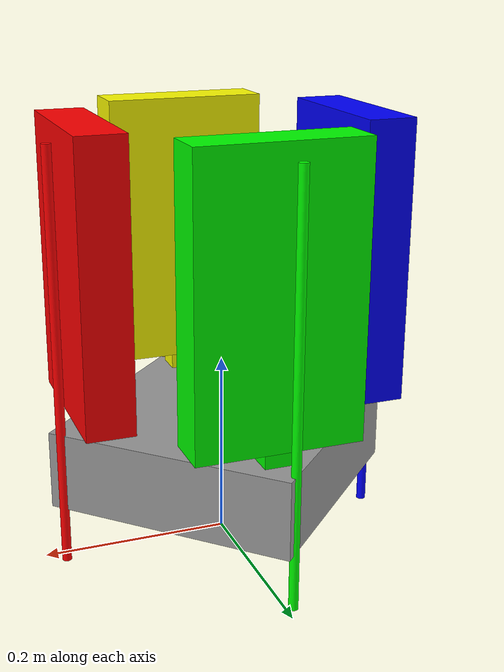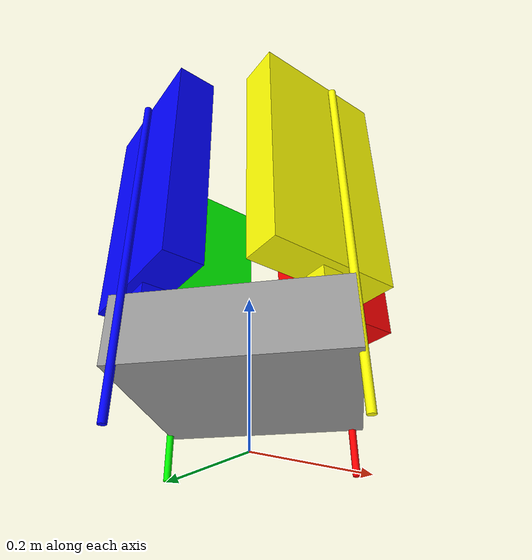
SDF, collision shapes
<?xml version='1.0'?>
<sdf version='1.6'>
  <model name='ComplexAquaShoko'>
    <link name='Baselink'>
      <pose frame=''>0 0 0.1 0 -0 0</pose>
      <inertial>
        <mass>2.55</mass>
        <inertia>
          <ixx>1</ixx>
          <ixy>0</ixy>
          <ixz>0</ixz>
          <iyy>1</iyy>
          <iyz>0</iyz>
          <izz>1</izz>
        </inertia>
        <pose frame=''>0 0 0 0 -0 0</pose>
      </inertial>
      <self_collide>0</self_collide>
      <kinematic>0</kinematic>
      <enable_wind>0</enable_wind>
      <visual name='visual'>
        <pose frame=''>0 0 -0.064 0 -0 0</pose>
        <geometry>
          <mesh>
            <uri>model://ComplexAquaShoko/meshes/BaseLink.dae</uri>
            <scale>1 1 1</scale>
          </mesh>
        </geometry>
        <material>
          <lighting>1</lighting>
          <script>
            <uri>file://media/materials/scripts/gazebo.material</uri>
            <name>Gazebo/Grey</name>
          </script>
          <ambient>0 0 0 0</ambient>
          <diffuse>0.7 0.7 0.7 1</diffuse>
          <specular>0.01 0.01 0.01 1</specular>
          <emissive>0 0 0 1</emissive>
          <shader type='vertex'>
            <normal_map>__default__</normal_map>
          </shader>
        </material>
        <transparency>0</transparency>
        <cast_shadows>1</cast_shadows>
      </visual>
      <collision name='collision'>
        <laser_retro>0</laser_retro>
        <max_contacts>10</max_contacts>
        <pose frame=''>0 0 0 0 -0 0.785</pose>
        <geometry>
          <box>
            <size>0.27 0.27 0.084</size>
          </box>
        </geometry>
        <surface>
          <friction>
            <ode>
              <mu>1</mu>
              <mu2>1</mu2>
              <fdir1>0 0 0</fdir1>
              <slip1>0</slip1>
              <slip2>0</slip2>
            </ode>
            <torsional>
              <coefficient>1</coefficient>
              <patch_radius>0</patch_radius>
              <surface_radius>0</surface_radius>
              <use_patch_radius>1</use_patch_radius>
              <ode>
                <slip>0</slip>
              </ode>
            </torsional>
          </friction>
          <bounce>
            <restitution_coefficient>0</restitution_coefficient>
            <threshold>1e+06</threshold>
          </bounce>
          <contact>
            <collide_without_contact>0</collide_without_contact>
            <collide_without_contact_bitmask>1</collide_without_contact_bitmask>
            <collide_bitmask>1</collide_bitmask>
            <ode>
              <soft_cfm>0</soft_cfm>
              <soft_erp>0.8</soft_erp>
              <kp>1e+13</kp>
              <kd>1</kd>
              <max_vel>0.01</max_vel>
              <min_depth>0</min_depth>
            </ode>
            <bullet>
              <split_impulse>1</split_impulse>
              <split_impulse_penetration_threshold>-0.01</split_impulse_penetration_threshold>
              <soft_cfm>0</soft_cfm>
              <soft_erp>0.8</soft_erp>
              <kp>1e+13</kp>
              <kd>1</kd>
            </bullet>
          </contact>
        </surface>
      </collision>
    </link>
    <link name='HormToHorn1'>
      <pose frame=''>0.145 0 0.17 0 -0 3.14</pose>
      <inertial>
        <mass>0.033</mass>
        <inertia>
          <ixx>1</ixx>
          <ixy>0</ixy>
          <ixz>0</ixz>
          <iyy>1</iyy>
          <iyz>0</iyz>
          <izz>1</izz>
        </inertia>
        <pose frame=''>0 0 0 0 -0 0</pose>
      </inertial>
      <self_collide>0</self_collide>
      <kinematic>0</kinematic>
      <enable_wind>0</enable_wind>
      <gravity>1</gravity>
      <visual name='visual'>
        <pose frame=''>0 0 -0.0535 0 -0 0</pose>
        <geometry>
          <mesh>
            <uri>model://ComplexAquaShoko/meshes/HornToHornLink.dae</uri>
            <scale>1 1 1</scale>
          </mesh>
        </geometry>
        <material>
          <lighting>1</lighting>
          <script>
            <uri>file://media/materials/scripts/gazebo.material</uri>
            <name>Gazebo/Grey</name>
          </script>
          <ambient>1 0 0 1</ambient>
          <diffuse>0.7 0.7 0.7 1</diffuse>
          <specular>0.01 0.01 0.01 1</specular>
          <emissive>0 0 0 1</emissive>
          <shader type='vertex'>
            <normal_map>__default__</normal_map>
          </shader>
        </material>
        <transparency>0</transparency>
        <cast_shadows>1</cast_shadows>
      </visual>
      <collision name='collision'>
        <laser_retro>0</laser_retro>
        <max_contacts>10</max_contacts>
        <pose frame=''>0 0 0 0 -0 0</pose>
        <geometry>
          <box>
            <size>0.028 0.028 0.053</size>
          </box>
        </geometry>
        <surface>
          <friction>
            <ode>
              <mu>1</mu>
              <mu2>1</mu2>
              <fdir1>0 0 0</fdir1>
              <slip1>0</slip1>
              <slip2>0</slip2>
            </ode>
            <torsional>
              <coefficient>1</coefficient>
              <patch_radius>0</patch_radius>
              <surface_radius>0</surface_radius>
              <use_patch_radius>1</use_patch_radius>
              <ode>
                <slip>0</slip>
              </ode>
            </torsional>
          </friction>
          <bounce>
            <restitution_coefficient>0</restitution_coefficient>
            <threshold>1e+06</threshold>
          </bounce>
          <contact>
            <collide_without_contact>0</collide_without_contact>
            <collide_without_contact_bitmask>1</collide_without_contact_bitmask>
            <collide_bitmask>1</collide_bitmask>
            <ode>
              <soft_cfm>0</soft_cfm>
              <soft_erp>0.8</soft_erp>
              <kp>1e+13</kp>
              <kd>1</kd>
              <max_vel>0.01</max_vel>
              <min_depth>0</min_depth>
            </ode>
            <bullet>
              <split_impulse>1</split_impulse>
              <split_impulse_penetration_threshold>-0.01</split_impulse_penetration_threshold>
              <soft_cfm>0</soft_cfm>
              <soft_erp>0.8</soft_erp>
              <kp>1e+13</kp>
              <kd>1</kd>
            </bullet>
          </contact>
        </surface>
      </collision>
    </link>
    <link name='HormToHorn2'>
      <pose frame=''>0 0.145 0.17 0 0 -1.57</pose>
      <inertial>
        <mass>0.033</mass>
        <inertia>
          <ixx>1</ixx>
          <ixy>0</ixy>
          <ixz>0</ixz>
          <iyy>1</iyy>
          <iyz>0</iyz>
          <izz>1</izz>
        </inertia>
        <pose frame=''>0 0 0 0 -0 0</pose>
      </inertial>
      <self_collide>0</self_collide>
      <kinematic>0</kinematic>
      <enable_wind>0</enable_wind>
      <gravity>1</gravity>
      <visual name='visual'>
        <pose frame=''>0 0 -0.0535 0 -0 0</pose>
        <geometry>
          <mesh>
            <uri>model://ComplexAquaShoko/meshes/HornToHornLink.dae</uri>
            <scale>1 1 1</scale>
          </mesh>
        </geometry>
        <material>
          <lighting>1</lighting>
          <script>
            <uri>file://media/materials/scripts/gazebo.material</uri>
            <name>Gazebo/Grey</name>
          </script>
          <ambient>0 1 0 1</ambient>
          <diffuse>0.7 0.7 0.7 1</diffuse>
          <specular>0.01 0.01 0.01 1</specular>
          <emissive>0 0 0 1</emissive>
          <shader type='vertex'>
            <normal_map>__default__</normal_map>
          </shader>
        </material>
        <transparency>0</transparency>
        <cast_shadows>1</cast_shadows>
      </visual>
      <collision name='collision'>
        <laser_retro>0</laser_retro>
        <max_contacts>10</max_contacts>
        <pose frame=''>0 0 0 0 -0 0</pose>
        <geometry>
          <box>
            <size>0.028 0.028 0.053</size>
          </box>
        </geometry>
        <surface>
          <friction>
            <ode>
              <mu>1</mu>
              <mu2>1</mu2>
              <fdir1>0 0 0</fdir1>
              <slip1>0</slip1>
              <slip2>0</slip2>
            </ode>
            <torsional>
              <coefficient>1</coefficient>
              <patch_radius>0</patch_radius>
              <surface_radius>0</surface_radius>
              <use_patch_radius>1</use_patch_radius>
              <ode>
                <slip>0</slip>
              </ode>
            </torsional>
          </friction>
          <bounce>
            <restitution_coefficient>0</restitution_coefficient>
            <threshold>1e+06</threshold>
          </bounce>
          <contact>
            <collide_without_contact>0</collide_without_contact>
            <collide_without_contact_bitmask>1</collide_without_contact_bitmask>
            <collide_bitmask>1</collide_bitmask>
            <ode>
              <soft_cfm>0</soft_cfm>
              <soft_erp>0.8</soft_erp>
              <kp>1e+13</kp>
              <kd>1</kd>
              <max_vel>0.01</max_vel>
              <min_depth>0</min_depth>
            </ode>
            <bullet>
              <split_impulse>1</split_impulse>
              <split_impulse_penetration_threshold>-0.01</split_impulse_penetration_threshold>
              <soft_cfm>0</soft_cfm>
              <soft_erp>0.8</soft_erp>
              <kp>1e+13</kp>
              <kd>1</kd>
            </bullet>
          </contact>
        </surface>
      </collision>
    </link>
    <link name='HormToHorn3'>
      <pose frame=''>-0.145 0 0.17 0 -0 0</pose>
      <inertial>
        <mass>0.033</mass>
        <inertia>
          <ixx>1</ixx>
          <ixy>0</ixy>
          <ixz>0</ixz>
          <iyy>1</iyy>
          <iyz>0</iyz>
          <izz>1</izz>
        </inertia>
        <pose frame=''>0 0 0 0 -0 0</pose>
      </inertial>
      <self_collide>0</self_collide>
      <kinematic>0</kinematic>
      <enable_wind>0</enable_wind>
      <gravity>1</gravity>
      <visual name='visual'>
        <pose frame=''>0 0 -0.0535 0 -0 0</pose>
        <geometry>
          <mesh>
            <uri>model://ComplezAquaShoko/meshes/HornToHornLink.dae</uri>
            <scale>1 1 1</scale>
          </mesh>
        </geometry>
        <material>
          <lighting>1</lighting>
          <script>
            <uri>file://media/materials/scripts/gazebo.material</uri>
            <name>Gazebo/Grey</name>
          </script>
          <ambient>0 0 1 1</ambient>
          <diffuse>0.7 0.7 0.7 1</diffuse>
          <specular>0.01 0.01 0.01 1</specular>
          <emissive>0 0 0 1</emissive>
          <shader type='vertex'>
            <normal_map>__default__</normal_map>
          </shader>
        </material>
        <transparency>0</transparency>
        <cast_shadows>1</cast_shadows>
      </visual>
      <collision name='collision'>
        <laser_retro>0</laser_retro>
        <max_contacts>10</max_contacts>
        <pose frame=''>0 0 0 0 -0 0</pose>
        <geometry>
          <box>
            <size>0.028 0.028 0.053</size>
          </box>
        </geometry>
        <surface>
          <friction>
            <ode>
              <mu>1</mu>
              <mu2>1</mu2>
              <fdir1>0 0 0</fdir1>
              <slip1>0</slip1>
              <slip2>0</slip2>
            </ode>
            <torsional>
              <coefficient>1</coefficient>
              <patch_radius>0</patch_radius>
              <surface_radius>0</surface_radius>
              <use_patch_radius>1</use_patch_radius>
              <ode>
                <slip>0</slip>
              </ode>
            </torsional>
          </friction>
          <bounce>
            <restitution_coefficient>0</restitution_coefficient>
            <threshold>1e+06</threshold>
          </bounce>
          <contact>
            <collide_without_contact>0</collide_without_contact>
            <collide_without_contact_bitmask>1</collide_without_contact_bitmask>
            <collide_bitmask>1</collide_bitmask>
            <ode>
              <soft_cfm>0</soft_cfm>
              <soft_erp>0.8</soft_erp>
              <kp>1e+13</kp>
              <kd>1</kd>
              <max_vel>0.01</max_vel>
              <min_depth>0</min_depth>
            </ode>
            <bullet>
              <split_impulse>1</split_impulse>
              <split_impulse_penetration_threshold>-0.01</split_impulse_penetration_threshold>
              <soft_cfm>0</soft_cfm>
              <soft_erp>0.8</soft_erp>
              <kp>1e+13</kp>
              <kd>1</kd>
            </bullet>
          </contact>
        </surface>
      </collision>
    </link>
    <link name='HormToHorn4'>
      <pose frame=''>0 -0.145 0.17 0 -0 1.57</pose>
      <inertial>
        <mass>0.033</mass>
        <inertia>
          <ixx>1</ixx>
          <ixy>0</ixy>
          <ixz>0</ixz>
          <iyy>1</iyy>
          <iyz>0</iyz>
          <izz>1</izz>
        </inertia>
        <pose frame=''>0 0 0 0 -0 0</pose>
      </inertial>
      <self_collide>0</self_collide>
      <kinematic>0</kinematic>
      <enable_wind>0</enable_wind>
      <gravity>1</gravity>
      <visual name='visual'>
        <pose frame=''>0 0 -0.0535 0 -0 0</pose>
        <geometry>
          <mesh>
            <uri>model://ComplexAquaShoko/meshes/HornToHornLink.dae</uri>
            <scale>1 1 1</scale>
          </mesh>
        </geometry>
        <material>
          <lighting>1</lighting>
          <script>
            <uri>file://media/materials/scripts/gazebo.material</uri>
            <name>Gazebo/Grey</name>
          </script>
          <ambient>1 1 0 1</ambient>
          <diffuse>0.7 0.7 0.7 1</diffuse>
          <specular>0.01 0.01 0.01 1</specular>
          <emissive>0 0 0 1</emissive>
          <shader type='vertex'>
            <normal_map>__default__</normal_map>
          </shader>
        </material>
        <transparency>0</transparency>
        <cast_shadows>1</cast_shadows>
      </visual>
      <collision name='collision'>
        <laser_retro>0</laser_retro>
        <max_contacts>10</max_contacts>
        <pose frame=''>0 0 0 0 -0 0</pose>
        <geometry>
          <box>
            <size>0.028 0.028 0.053</size>
          </box>
        </geometry>
        <surface>
          <friction>
            <ode>
              <mu>1</mu>
              <mu2>1</mu2>
              <fdir1>0 0 0</fdir1>
              <slip1>0</slip1>
              <slip2>0</slip2>
            </ode>
            <torsional>
              <coefficient>1</coefficient>
              <patch_radius>0</patch_radius>
              <surface_radius>0</surface_radius>
              <use_patch_radius>1</use_patch_radius>
              <ode>
                <slip>0</slip>
              </ode>
            </torsional>
          </friction>
          <bounce>
            <restitution_coefficient>0</restitution_coefficient>
            <threshold>1e+06</threshold>
          </bounce>
          <contact>
            <collide_without_contact>0</collide_without_contact>
            <collide_without_contact_bitmask>1</collide_without_contact_bitmask>
            <collide_bitmask>1</collide_bitmask>
            <ode>
              <soft_cfm>0</soft_cfm>
              <soft_erp>0.8</soft_erp>
              <kp>1e+13</kp>
              <kd>1</kd>
              <max_vel>0.01</max_vel>
              <min_depth>0</min_depth>
            </ode>
            <bullet>
              <split_impulse>1</split_impulse>
              <split_impulse_penetration_threshold>-0.01</split_impulse_penetration_threshold>
              <soft_cfm>0</soft_cfm>
              <soft_erp>0.8</soft_erp>
              <kp>1e+13</kp>
              <kd>1</kd>
            </bullet>
          </contact>
        </surface>
      </collision>
    </link>
    <link name='endLeg1'>
      <pose frame=''>0.180014 0.009444 0.22 0 -0 0</pose>
      <inertial>
        <mass>0.088</mass>
        <inertia>
          <ixx>1</ixx>
          <ixy>0</ixy>
          <ixz>0</ixz>
          <iyy>1</iyy>
          <iyz>0</iyz>
          <izz>1</izz>
        </inertia>
        <pose frame=''>0 0 0 0 -0 0</pose>
      </inertial>
      <self_collide>0</self_collide>
      <kinematic>0</kinematic>
      <enable_wind>0</enable_wind>
      <gravity>1</gravity>
      <visual name='visual'>
        <pose frame=''>0 0 -0.243 0 -0 0</pose>
        <geometry>
          <mesh>
            <uri>model://ComplexAquaShoko/meshes/endLegLink.dae</uri>
            <scale>1 1 1</scale>
          </mesh>
        </geometry>
        <material>
          <lighting>1</lighting>
          <script>
            <uri>file://media/materials/scripts/gazebo.material</uri>
            <name>Gazebo/Grey</name>
          </script>
          <ambient>1 0 0 1</ambient>
          <diffuse>0.7 0.7 0.7 1</diffuse>
          <specular>0.01 0.01 0.01 1</specular>
          <emissive>0 0 0 1</emissive>
          <shader type='vertex'>
            <normal_map>__default__</normal_map>
          </shader>
        </material>
        <transparency>0</transparency>
        <cast_shadows>1</cast_shadows>
      </visual>
      <collision name='collision'>
        <laser_retro>0</laser_retro>
        <max_contacts>10</max_contacts>
        <pose frame=''>0 0 0 0 -0 0</pose>
        <geometry>
          <cylinder>
            <radius>0.005</radius>
            <length>0.446</length>
          </cylinder>
        </geometry>
        <surface>
          <friction>
            <ode>
              <mu>0.5</mu>
              <mu2>0.5</mu2>
              <fdir1>0 0 0</fdir1>
              <slip1>0</slip1>
              <slip2>0</slip2>
            </ode>
            <torsional>
              <coefficient>1</coefficient>
              <patch_radius>0</patch_radius>
              <surface_radius>0</surface_radius>
              <use_patch_radius>1</use_patch_radius>
              <ode>
                <slip>0</slip>
              </ode>
            </torsional>
          </friction>
          <bounce>
            <restitution_coefficient>0</restitution_coefficient>
            <threshold>1e+20</threshold>
          </bounce>
          <contact>
            <collide_without_contact>0</collide_without_contact>
            <collide_without_contact_bitmask>1</collide_without_contact_bitmask>
            <collide_bitmask>1</collide_bitmask>
            <ode>
              <soft_cfm>0</soft_cfm>
              <soft_erp>0.8</soft_erp>
              <kp>1e+13</kp>
              <kd>1</kd>
              <max_vel>0.01</max_vel>
              <min_depth>0</min_depth>
            </ode>
            <bullet>
              <split_impulse>1</split_impulse>
              <split_impulse_penetration_threshold>-0.01</split_impulse_penetration_threshold>
              <soft_cfm>0</soft_cfm>
              <soft_erp>0.8</soft_erp>
              <kp>1e+13</kp>
              <kd>1</kd>
            </bullet>
          </contact>
        </surface>
      </collision>
    </link>
    <link name='endLeg2'>
      <pose frame=''>-0.009528 0.179992 0.22 0 -0 1.57</pose>
      <inertial>
        <mass>0.088</mass>
        <inertia>
          <ixx>1</ixx>
          <ixy>0</ixy>
          <ixz>0</ixz>
          <iyy>1</iyy>
          <iyz>0</iyz>
          <izz>1</izz>
        </inertia>
        <pose frame=''>0 0 0 0 -0 0</pose>
      </inertial>
      <self_collide>0</self_collide>
      <kinematic>0</kinematic>
      <enable_wind>0</enable_wind>
      <gravity>1</gravity>
      <visual name='visual'>
        <pose frame=''>0 0 -0.243 0 -0 0</pose>
        <geometry>
          <mesh>
            <uri>model://ComplexAquaShoko/meshes/endLegLink.dae</uri>
            <scale>1 1 1</scale>
          </mesh>
        </geometry>
        <material>
          <lighting>1</lighting>
          <script>
            <uri>file://media/materials/scripts/gazebo.material</uri>
            <name>Gazebo/Grey</name>
          </script>
          <ambient>0 1 0 1</ambient>
          <diffuse>0.7 0.7 0.7 1</diffuse>
          <specular>0.01 0.01 0.01 1</specular>
          <emissive>0 0 0 1</emissive>
          <shader type='vertex'>
            <normal_map>__default__</normal_map>
          </shader>
        </material>
        <transparency>0</transparency>
        <cast_shadows>1</cast_shadows>
      </visual>
      <collision name='collision'>
        <laser_retro>0</laser_retro>
        <max_contacts>10</max_contacts>
        <pose frame=''>0 0 0 0 -0 0</pose>
        <geometry>
          <cylinder>
            <radius>0.005</radius>
            <length>0.446</length>
          </cylinder>
        </geometry>
        <surface>
          <friction>
            <ode>
              <mu>0.5</mu>
              <mu2>0.5</mu2>
              <fdir1>0 0 0</fdir1>
              <slip1>0</slip1>
              <slip2>0</slip2>
            </ode>
            <torsional>
              <coefficient>1</coefficient>
              <patch_radius>0</patch_radius>
              <surface_radius>0</surface_radius>
              <use_patch_radius>1</use_patch_radius>
              <ode>
                <slip>0</slip>
              </ode>
            </torsional>
          </friction>
          <bounce>
            <restitution_coefficient>0</restitution_coefficient>
            <threshold>1e+20</threshold>
          </bounce>
          <contact>
            <collide_without_contact>0</collide_without_contact>
            <collide_without_contact_bitmask>1</collide_without_contact_bitmask>
            <collide_bitmask>1</collide_bitmask>
            <ode>
              <soft_cfm>0</soft_cfm>
              <soft_erp>0.8</soft_erp>
              <kp>1e+13</kp>
              <kd>1</kd>
              <max_vel>0.01</max_vel>
              <min_depth>0</min_depth>
            </ode>
            <bullet>
              <split_impulse>1</split_impulse>
              <split_impulse_penetration_threshold>-0.01</split_impulse_penetration_threshold>
              <soft_cfm>0</soft_cfm>
              <soft_erp>0.8</soft_erp>
              <kp>1e+13</kp>
              <kd>1</kd>
            </bullet>
          </contact>
        </surface>
      </collision>
    </link>
    <link name='endLeg3'>
      <pose frame=''>-0.18 -0.0095 0.22 0 -0 3.14</pose>
      <inertial>
        <mass>0.088</mass>
        <inertia>
          <ixx>1</ixx>
          <ixy>0</ixy>
          <ixz>0</ixz>
          <iyy>1</iyy>
          <iyz>0</iyz>
          <izz>1</izz>
        </inertia>
        <pose frame=''>0 0 0 0 -0 0</pose>
      </inertial>
      <self_collide>0</self_collide>
      <kinematic>0</kinematic>
      <enable_wind>0</enable_wind>
      <gravity>1</gravity>
      <visual name='visual'>
        <pose frame=''>0 0 -0.243 0 -0 0</pose>
        <geometry>
          <mesh>
            <uri>model://ComplexAquaShoko/meshes/endLegLink.dae</uri>
            <scale>1 1 1</scale>
          </mesh>
        </geometry>
        <material>
          <lighting>1</lighting>
          <script>
            <uri>file://media/materials/scripts/gazebo.material</uri>
            <name>Gazebo/Grey</name>
          </script>
          <ambient>0 0 1 1</ambient>
          <diffuse>0.7 0.7 0.7 1</diffuse>
          <specular>0.01 0.01 0.01 1</specular>
          <emissive>0 0 0 1</emissive>
          <shader type='vertex'>
            <normal_map>__default__</normal_map>
          </shader>
        </material>
        <transparency>0</transparency>
        <cast_shadows>1</cast_shadows>
      </visual>
      <collision name='collision'>
        <laser_retro>0</laser_retro>
        <max_contacts>10</max_contacts>
        <pose frame=''>0 0 0 0 -0 0</pose>
        <geometry>
          <cylinder>
            <radius>0.005</radius>
            <length>0.446</length>
          </cylinder>
        </geometry>
        <surface>
          <friction>
            <ode>
              <mu>0.5</mu>
              <mu2>0.5</mu2>
              <fdir1>0 0 0</fdir1>
              <slip1>0</slip1>
              <slip2>0</slip2>
            </ode>
            <torsional>
              <coefficient>1</coefficient>
              <patch_radius>0</patch_radius>
              <surface_radius>0</surface_radius>
              <use_patch_radius>1</use_patch_radius>
              <ode>
                <slip>0</slip>
              </ode>
            </torsional>
          </friction>
          <bounce>
            <restitution_coefficient>0</restitution_coefficient>
            <threshold>1e+20</threshold>
          </bounce>
          <contact>
            <collide_without_contact>0</collide_without_contact>
            <collide_without_contact_bitmask>1</collide_without_contact_bitmask>
            <collide_bitmask>1</collide_bitmask>
            <ode>
              <soft_cfm>0</soft_cfm>
              <soft_erp>0.8</soft_erp>
              <kp>1e+13</kp>
              <kd>1</kd>
              <max_vel>0.01</max_vel>
              <min_depth>0</min_depth>
            </ode>
            <bullet>
              <split_impulse>1</split_impulse>
              <split_impulse_penetration_threshold>-0.01</split_impulse_penetration_threshold>
              <soft_cfm>0</soft_cfm>
              <soft_erp>0.8</soft_erp>
              <kp>1e+13</kp>
              <kd>1</kd>
            </bullet>
          </contact>
        </surface>
      </collision>
    </link>
    <link name='endLeg4'>
      <pose frame=''>0.009472 -0.180008 0.22 0 0 -1.57319</pose>
      <inertial>
        <mass>0.088</mass>
        <inertia>
          <ixx>1</ixx>
          <ixy>0</ixy>
          <ixz>0</ixz>
          <iyy>1</iyy>
          <iyz>0</iyz>
          <izz>1</izz>
        </inertia>
        <pose frame=''>0 0 0 0 -0 0</pose>
      </inertial>
      <self_collide>0</self_collide>
      <kinematic>0</kinematic>
      <enable_wind>0</enable_wind>
      <gravity>1</gravity>
      <visual name='visual'>
        <pose frame=''>0 0 -0.243 0 -0 0</pose>
        <geometry>
          <mesh>
            <uri>model://ComplexAquaShoko/meshes/endLegLink.dae</uri>
            <scale>1 1 1</scale>
          </mesh>
        </geometry>
        <material>
          <lighting>1</lighting>
          <script>
            <uri>file://media/materials/scripts/gazebo.material</uri>
            <name>Gazebo/Grey</name>
          </script>
          <ambient>1 1 0 1</ambient>
          <diffuse>0.7 0.7 0.7 1</diffuse>
          <specular>0.01 0.01 0.01 1</specular>
          <emissive>0 0 0 1</emissive>
          <shader type='vertex'>
            <normal_map>__default__</normal_map>
          </shader>
        </material>
        <transparency>0</transparency>
        <cast_shadows>1</cast_shadows>
      </visual>
      <collision name='collision'>
        <laser_retro>0</laser_retro>
        <max_contacts>10</max_contacts>
        <pose frame=''>0 0 0 0 -0 0</pose>
        <geometry>
          <cylinder>
            <radius>0.005</radius>
            <length>0.446</length>
          </cylinder>
        </geometry>
        <surface>
          <friction>
            <ode>
              <mu>0.5</mu>
              <mu2>0.5</mu2>
              <fdir1>0 0 0</fdir1>
              <slip1>0</slip1>
              <slip2>0</slip2>
            </ode>
            <torsional>
              <coefficient>1</coefficient>
              <patch_radius>0</patch_radius>
              <surface_radius>0</surface_radius>
              <use_patch_radius>1</use_patch_radius>
              <ode>
                <slip>0</slip>
              </ode>
            </torsional>
          </friction>
          <bounce>
            <restitution_coefficient>0</restitution_coefficient>
            <threshold>1e+20</threshold>
          </bounce>
          <contact>
            <collide_without_contact>0</collide_without_contact>
            <collide_without_contact_bitmask>1</collide_without_contact_bitmask>
            <collide_bitmask>1</collide_bitmask>
            <ode>
              <soft_cfm>0</soft_cfm>
              <soft_erp>0.8</soft_erp>
              <kp>1e+13</kp>
              <kd>1</kd>
              <max_vel>0.01</max_vel>
              <min_depth>0</min_depth>
            </ode>
            <bullet>
              <split_impulse>1</split_impulse>
              <split_impulse_penetration_threshold>-0.01</split_impulse_penetration_threshold>
              <soft_cfm>0</soft_cfm>
              <soft_erp>0.8</soft_erp>
              <kp>1e+13</kp>
              <kd>1</kd>
            </bullet>
          </contact>
        </surface>
      </collision>
    </link>
    <link name='middleLeg1'>
      <pose frame=''>0.144995 -0.0025 0.312 0 -0 3.14</pose>
      <inertial>
        <mass>1.39</mass>
        <inertia>
          <ixx>1</ixx>
          <ixy>0</ixy>
          <ixz>0</ixz>
          <iyy>1</iyy>
          <iyz>0</iyz>
          <izz>1</izz>
        </inertia>
        <pose frame=''>0 0 0 0 -0 0</pose>
      </inertial>
      <self_collide>0</self_collide>
      <kinematic>0</kinematic>
      <enable_wind>0</enable_wind>
      <gravity>1</gravity>
      <visual name='visual'>
        <pose frame=''>0 0 -0.17 0 -0 0</pose>
        <geometry>
          <mesh>
            <uri>model://ComplexAquaShoko/meshes/middleLegLink.dae</uri>
            <scale>1 1 1</scale>
          </mesh>
        </geometry>
        <material>
          <lighting>1</lighting>
          <script>
            <uri>file://media/materials/scripts/gazebo.material</uri>
            <name>Gazebo/Grey</name>
          </script>
          <ambient>1 0 0 1</ambient>
          <diffuse>0.7 0.7 0.7 1</diffuse>
          <specular>0.01 0.01 0.01 1</specular>
          <emissive>0 0 0 1</emissive>
          <shader type='vertex'>
            <normal_map>__default__</normal_map>
          </shader>
        </material>
        <transparency>0</transparency>
        <cast_shadows>1</cast_shadows>
      </visual>
      <collision name='collision'>
        <laser_retro>0</laser_retro>
        <max_contacts>10</max_contacts>
        <pose frame=''>0 0 0 0 -0 0</pose>
        <geometry>
          <box>
            <size>0.051 0.173 0.297</size>
          </box>
        </geometry>
        <surface>
          <friction>
            <ode>
              <mu>1</mu>
              <mu2>1</mu2>
              <fdir1>0 0 0</fdir1>
              <slip1>0</slip1>
              <slip2>0</slip2>
            </ode>
            <torsional>
              <coefficient>1</coefficient>
              <patch_radius>0</patch_radius>
              <surface_radius>0</surface_radius>
              <use_patch_radius>1</use_patch_radius>
              <ode>
                <slip>0</slip>
              </ode>
            </torsional>
          </friction>
          <bounce>
            <restitution_coefficient>0</restitution_coefficient>
            <threshold>1e+06</threshold>
          </bounce>
          <contact>
            <collide_without_contact>0</collide_without_contact>
            <collide_without_contact_bitmask>1</collide_without_contact_bitmask>
            <collide_bitmask>1</collide_bitmask>
            <ode>
              <soft_cfm>0</soft_cfm>
              <soft_erp>0.8</soft_erp>
              <kp>1e+13</kp>
              <kd>1</kd>
              <max_vel>0.01</max_vel>
              <min_depth>0</min_depth>
            </ode>
            <bullet>
              <split_impulse>1</split_impulse>
              <split_impulse_penetration_threshold>-0.01</split_impulse_penetration_threshold>
              <soft_cfm>0</soft_cfm>
              <soft_erp>0.8</soft_erp>
              <kp>1e+13</kp>
              <kd>1</kd>
            </bullet>
          </contact>
        </surface>
      </collision>
    </link>
    <link name='middleLeg2'>
      <pose frame=''>0.0025 0.145002 0.312 0 0 -1.57</pose>
      <inertial>
        <mass>1.39</mass>
        <inertia>
          <ixx>1</ixx>
          <ixy>0</ixy>
          <ixz>0</ixz>
          <iyy>1</iyy>
          <iyz>0</iyz>
          <izz>1</izz>
        </inertia>
        <pose frame=''>0 0 0 0 -0 0</pose>
      </inertial>
      <self_collide>0</self_collide>
      <kinematic>0</kinematic>
      <enable_wind>0</enable_wind>
      <gravity>1</gravity>
      <visual name='visual'>
        <pose frame=''>0 0 -0.17 0 -0 0</pose>
        <geometry>
          <mesh>
            <uri>model://ComplexAquaShoko/meshes/middleLegLink.dae</uri>
            <scale>1 1 1</scale>
          </mesh>
        </geometry>
        <material>
          <lighting>1</lighting>
          <script>
            <uri>file://media/materials/scripts/gazebo.material</uri>
            <name>Gazebo/Grey</name>
          </script>
          <ambient>0 1 0 1</ambient>
          <diffuse>0.7 0.7 0.7 1</diffuse>
          <specular>0.01 0.01 0.01 1</specular>
          <emissive>0 0 0 1</emissive>
          <shader type='vertex'>
            <normal_map>__default__</normal_map>
          </shader>
        </material>
        <transparency>0</transparency>
        <cast_shadows>1</cast_shadows>
      </visual>
      <collision name='collision'>
        <laser_retro>0</laser_retro>
        <max_contacts>10</max_contacts>
        <pose frame=''>0 0 0 0 -0 0</pose>
        <geometry>
          <box>
            <size>0.051 0.173 0.297</size>
          </box>
        </geometry>
        <surface>
          <friction>
            <ode>
              <mu>1</mu>
              <mu2>1</mu2>
              <fdir1>0 0 0</fdir1>
              <slip1>0</slip1>
              <slip2>0</slip2>
            </ode>
            <torsional>
              <coefficient>1</coefficient>
              <patch_radius>0</patch_radius>
              <surface_radius>0</surface_radius>
              <use_patch_radius>1</use_patch_radius>
              <ode>
                <slip>0</slip>
              </ode>
            </torsional>
          </friction>
          <bounce>
            <restitution_coefficient>0</restitution_coefficient>
            <threshold>1e+06</threshold>
          </bounce>
          <contact>
            <collide_without_contact>0</collide_without_contact>
            <collide_without_contact_bitmask>1</collide_without_contact_bitmask>
            <collide_bitmask>1</collide_bitmask>
            <ode>
              <soft_cfm>0</soft_cfm>
              <soft_erp>0.8</soft_erp>
              <kp>1e+13</kp>
              <kd>1</kd>
              <max_vel>0.01</max_vel>
              <min_depth>0</min_depth>
            </ode>
            <bullet>
              <split_impulse>1</split_impulse>
              <split_impulse_penetration_threshold>-0.01</split_impulse_penetration_threshold>
              <soft_cfm>0</soft_cfm>
              <soft_erp>0.8</soft_erp>
              <kp>1e+13</kp>
              <kd>1</kd>
            </bullet>
          </contact>
        </surface>
      </collision>
    </link>
    <link name='middleLeg3'>
      <pose frame=''>-0.145 0.0025 0.312 0 -0 0</pose>
      <inertial>
        <mass>1.39</mass>
        <inertia>
          <ixx>1</ixx>
          <ixy>0</ixy>
          <ixz>0</ixz>
          <iyy>1</iyy>
          <iyz>0</iyz>
          <izz>1</izz>
        </inertia>
        <pose frame=''>0 0 0 0 -0 0</pose>
      </inertial>
      <self_collide>0</self_collide>
      <kinematic>0</kinematic>
      <enable_wind>0</enable_wind>
      <gravity>1</gravity>
      <visual name='visual'>
        <pose frame=''>0 0 -0.17 0 -0 0</pose>
        <geometry>
          <mesh>
            <uri>model://ComplexAquaShoko/meshes/middleLegLink.dae</uri>
            <scale>1 1 1</scale>
          </mesh>
        </geometry>
        <material>
          <lighting>1</lighting>
          <script>
            <uri>file://media/materials/scripts/gazebo.material</uri>
            <name>Gazebo/Grey</name>
          </script>
          <ambient>0 0 1 1</ambient>
          <diffuse>0.7 0.7 0.7 1</diffuse>
          <specular>0.01 0.01 0.01 1</specular>
          <emissive>0 0 0 1</emissive>
          <shader type='vertex'>
            <normal_map>__default__</normal_map>
          </shader>
        </material>
        <transparency>0</transparency>
        <cast_shadows>1</cast_shadows>
      </visual>
      <collision name='collision'>
        <laser_retro>0</laser_retro>
        <max_contacts>10</max_contacts>
        <pose frame=''>0 0 0 0 -0 0</pose>
        <geometry>
          <box>
            <size>0.051 0.173 0.297</size>
          </box>
        </geometry>
        <surface>
          <friction>
            <ode>
              <mu>1</mu>
              <mu2>1</mu2>
              <fdir1>0 0 0</fdir1>
              <slip1>0</slip1>
              <slip2>0</slip2>
            </ode>
            <torsional>
              <coefficient>1</coefficient>
              <patch_radius>0</patch_radius>
              <surface_radius>0</surface_radius>
              <use_patch_radius>1</use_patch_radius>
              <ode>
                <slip>0</slip>
              </ode>
            </torsional>
          </friction>
          <bounce>
            <restitution_coefficient>0</restitution_coefficient>
            <threshold>1e+06</threshold>
          </bounce>
          <contact>
            <collide_without_contact>0</collide_without_contact>
            <collide_without_contact_bitmask>1</collide_without_contact_bitmask>
            <collide_bitmask>1</collide_bitmask>
            <ode>
              <soft_cfm>0</soft_cfm>
              <soft_erp>0.8</soft_erp>
              <kp>1e+13</kp>
              <kd>1</kd>
              <max_vel>0.01</max_vel>
              <min_depth>0</min_depth>
            </ode>
            <bullet>
              <split_impulse>1</split_impulse>
              <split_impulse_penetration_threshold>-0.01</split_impulse_penetration_threshold>
              <soft_cfm>0</soft_cfm>
              <soft_erp>0.8</soft_erp>
              <kp>1e+13</kp>
              <kd>1</kd>
            </bullet>
          </contact>
        </surface>
      </collision>
    </link>
    <link name='middleLeg4'>
      <pose frame=''>-0.0025 -0.144998 0.3129 0 -0 1.57</pose>
      <inertial>
        <mass>1.39</mass>
        <inertia>
          <ixx>1</ixx>
          <ixy>0</ixy>
          <ixz>0</ixz>
          <iyy>1</iyy>
          <iyz>0</iyz>
          <izz>1</izz>
        </inertia>
        <pose frame=''>0 0 0 0 -0 0</pose>
      </inertial>
      <self_collide>0</self_collide>
      <kinematic>0</kinematic>
      <enable_wind>0</enable_wind>
      <gravity>1</gravity>
      <visual name='visual'>
        <pose frame=''>0 0 -0.17 0 -0 0</pose>
        <geometry>
          <mesh>
            <uri>model://ComplexAquaShoko/meshes/middleLegLink.dae</uri>
            <scale>1 1 1</scale>
          </mesh>
        </geometry>
        <material>
          <lighting>1</lighting>
          <script>
            <uri>file://media/materials/scripts/gazebo.material</uri>
            <name>Gazebo/Grey</name>
          </script>
          <ambient>1 1 0 1</ambient>
          <diffuse>0.7 0.7 0.7 1</diffuse>
          <specular>0.01 0.01 0.01 1</specular>
          <emissive>0 0 0 1</emissive>
          <shader type='vertex'>
            <normal_map>__default__</normal_map>
          </shader>
        </material>
        <transparency>0</transparency>
        <cast_shadows>1</cast_shadows>
      </visual>
      <collision name='collision'>
        <laser_retro>0</laser_retro>
        <max_contacts>10</max_contacts>
        <pose frame=''>0 0 0 0 -0 0</pose>
        <geometry>
          <box>
            <size>0.051 0.173 0.297</size>
          </box>
        </geometry>
        <surface>
          <friction>
            <ode>
              <mu>1</mu>
              <mu2>1</mu2>
              <fdir1>0 0 0</fdir1>
              <slip1>0</slip1>
              <slip2>0</slip2>
            </ode>
            <torsional>
              <coefficient>1</coefficient>
              <patch_radius>0</patch_radius>
              <surface_radius>0</surface_radius>
              <use_patch_radius>1</use_patch_radius>
              <ode>
                <slip>0</slip>
              </ode>
            </torsional>
          </friction>
          <bounce>
            <restitution_coefficient>0</restitution_coefficient>
            <threshold>1e+06</threshold>
          </bounce>
          <contact>
            <collide_without_contact>0</collide_without_contact>
            <collide_without_contact_bitmask>1</collide_without_contact_bitmask>
            <collide_bitmask>1</collide_bitmask>
            <ode>
              <soft_cfm>0</soft_cfm>
              <soft_erp>0.8</soft_erp>
              <kp>1e+13</kp>
              <kd>1</kd>
              <max_vel>0.01</max_vel>
              <min_depth>0</min_depth>
            </ode>
            <bullet>
              <split_impulse>1</split_impulse>
              <split_impulse_penetration_threshold>-0.01</split_impulse_penetration_threshold>
              <soft_cfm>0</soft_cfm>
              <soft_erp>0.8</soft_erp>
              <kp>1e+13</kp>
              <kd>1</kd>
            </bullet>
          </contact>
        </surface>
      </collision>
    </link>
    <joint name='jaw11' type='revolute'>
      <parent>Baselink</parent>
      <child>HormToHorn1</child>
      <pose frame=''>0 0 -0.02 0 -0 0</pose>
      <axis>
        <xyz>0 0 1</xyz>
        <use_parent_model_frame>0</use_parent_model_frame>
        <limit>
          <lower>-1.79769e+308</lower>
          <upper>1.79769e+308</upper>
          <effort>8.4</effort>
          <velocity>-1</velocity>
        </limit>
        <dynamics>
          <spring_reference>0</spring_reference>
          <spring_stiffness>0</spring_stiffness>
          <damping>0.002</damping>
          <friction>0.001</friction>
        </dynamics>
      </axis>
      <physics>
        <ode>
          <limit>
            <cfm>0</cfm>
            <erp>0.8</erp>
          </limit>
          <suspension>
            <cfm>0</cfm>
            <erp>0.8</erp>
          </suspension>
        </ode>
      </physics>
    </joint>
    <joint name='jaw21' type='revolute'>
      <parent>Baselink</parent>
      <child>HormToHorn2</child>
      <pose frame=''>0 0 -0.02 0 -0 0</pose>
      <axis>
        <xyz>0 0 1</xyz>
        <use_parent_model_frame>0</use_parent_model_frame>
        <limit>
          <lower>-1.79769e+308</lower>
          <upper>1.79769e+308</upper>
          <effort>8.4</effort>
          <velocity>-1</velocity>
        </limit>
        <dynamics>
          <spring_reference>0</spring_reference>
          <spring_stiffness>0</spring_stiffness>
          <damping>0.002</damping>
          <friction>0.001</friction>
        </dynamics>
      </axis>
      <physics>
        <ode>
          <limit>
            <cfm>0</cfm>
            <erp>0.8</erp>
          </limit>
          <suspension>
            <cfm>0</cfm>
            <erp>0.8</erp>
          </suspension>
        </ode>
      </physics>
    </joint>
    <joint name='jaw31' type='revolute'>
      <parent>Baselink</parent>
      <child>HormToHorn3</child>
      <pose frame=''>0 0 -0.01 0 -0 0</pose>
      <axis>
        <xyz>0 0 1</xyz>
        <use_parent_model_frame>0</use_parent_model_frame>
        <limit>
          <lower>-1.79769e+308</lower>
          <upper>1.79769e+308</upper>
          <effort>8.4</effort>
          <velocity>-1</velocity>
        </limit>
        <dynamics>
          <spring_reference>0</spring_reference>
          <spring_stiffness>0</spring_stiffness>
          <damping>0.002</damping>
          <friction>0.001</friction>
        </dynamics>
      </axis>
      <physics>
        <ode>
          <limit>
            <cfm>0</cfm>
            <erp>0.8</erp>
          </limit>
          <suspension>
            <cfm>0</cfm>
            <erp>0.8</erp>
          </suspension>
        </ode>
      </physics>
    </joint>
    <joint name='jaw41' type='revolute'>
      <parent>Baselink</parent>
      <child>HormToHorn4</child>
      <pose frame=''>0 0 -0.01 0 -0 0</pose>
      <axis>
        <xyz>0 0 1</xyz>
        <use_parent_model_frame>0</use_parent_model_frame>
        <limit>
          <lower>-1.79769e+308</lower>
          <upper>1.79769e+308</upper>
          <effort>8.4</effort>
          <velocity>-1</velocity>
        </limit>
        <dynamics>
          <spring_reference>0</spring_reference>
          <spring_stiffness>0</spring_stiffness>
          <damping>0.002</damping>
          <friction>0.001</friction>
        </dynamics>
      </axis>
      <physics>
        <ode>
          <limit>
            <cfm>0</cfm>
            <erp>0.8</erp>
          </limit>
          <suspension>
            <cfm>0</cfm>
            <erp>0.8</erp>
          </suspension>
        </ode>
      </physics>
    </joint>
    <joint name='pitch12' type='revolute'>
      <parent>HormToHorn1</parent>
      <child>middleLeg1</child>
      <pose frame=''>0 0 -0.13 0 -0 0</pose>
      <axis>
        <xyz>0 1 0</xyz>
        <use_parent_model_frame>0</use_parent_model_frame>
        <limit>
          <lower>-1.9</lower>
          <upper>1.9</upper>
          <effort>8.4</effort>
          <velocity>-1</velocity>
        </limit>
        <dynamics>
          <spring_reference>0</spring_reference>
          <spring_stiffness>0</spring_stiffness>
          <damping>0.002</damping>
          <friction>0.001</friction>
        </dynamics>
      </axis>
      <physics>
        <ode>
          <limit>
            <cfm>0</cfm>
            <erp>0.8</erp>
          </limit>
          <suspension>
            <cfm>0</cfm>
            <erp>0.8</erp>
          </suspension>
        </ode>
      </physics>
    </joint>
    <joint name='pitch13' type='revolute'>
      <parent>middleLeg1</parent>
      <child>endLeg1</child>
      <pose frame=''>-0.035 0 0.22 0 -0 0</pose>
      <axis>
        <xyz>0 1 0</xyz>
        <use_parent_model_frame>0</use_parent_model_frame>
        <limit>
          <lower>-5</lower>
          <upper>0.04</upper>
          <effort>8.4</effort>
          <velocity>-1</velocity>
        </limit>
        <dynamics>
          <spring_reference>0</spring_reference>
          <spring_stiffness>0</spring_stiffness>
          <damping>0.002</damping>
          <friction>0.001</friction>
        </dynamics>
      </axis>
      <physics>
        <ode>
          <limit>
            <cfm>0</cfm>
            <erp>0.8</erp>
          </limit>
          <suspension>
            <cfm>0</cfm>
            <erp>0.8</erp>
          </suspension>
        </ode>
      </physics>
    </joint>
    <joint name='pitch22' type='revolute'>
      <parent>HormToHorn2</parent>
      <child>middleLeg2</child>
      <pose frame=''>0 0 -0.13 0 -0 0</pose>
      <axis>
        <xyz>0 1 0</xyz>
        <use_parent_model_frame>0</use_parent_model_frame>
        <limit>
          <lower>-1.9</lower>
          <upper>1.9</upper>
          <effort>8.4</effort>
          <velocity>-1</velocity>
        </limit>
        <dynamics>
          <spring_reference>0</spring_reference>
          <spring_stiffness>0</spring_stiffness>
          <damping>0.002</damping>
          <friction>0.001</friction>
        </dynamics>
      </axis>
      <physics>
        <ode>
          <limit>
            <cfm>0</cfm>
            <erp>0.8</erp>
          </limit>
          <suspension>
            <cfm>0</cfm>
            <erp>0.1</erp>
          </suspension>
        </ode>
      </physics>
    </joint>
    <joint name='pitch23' type='revolute'>
      <parent>middleLeg2</parent>
      <child>endLeg2</child>
      <pose frame=''>-0.035 0 0.22 0 -0 0</pose>
      <axis>
        <xyz>0 1 0</xyz>
        <use_parent_model_frame>0</use_parent_model_frame>
        <limit>
          <lower>-5</lower>
          <upper>0.04</upper>
          <effort>8.4</effort>
          <velocity>-1</velocity>
        </limit>
        <dynamics>
          <spring_reference>0</spring_reference>
          <spring_stiffness>0</spring_stiffness>
          <damping>0.002</damping>
          <friction>0.001</friction>
        </dynamics>
      </axis>
      <physics>
        <ode>
          <limit>
            <cfm>0</cfm>
            <erp>0.8</erp>
          </limit>
          <suspension>
            <cfm>0</cfm>
            <erp>0.8</erp>
          </suspension>
        </ode>
      </physics>
    </joint>
    <joint name='pitch32' type='revolute'>
      <parent>HormToHorn3</parent>
      <child>middleLeg3</child>
      <pose frame=''>0 0 -0.13 0 -0 0</pose>
      <axis>
        <xyz>0 1 0</xyz>
        <use_parent_model_frame>0</use_parent_model_frame>
        <limit>
          <lower>-1.9</lower>
          <upper>1.9</upper>
          <effort>8.4</effort>
          <velocity>-1</velocity>
        </limit>
        <dynamics>
          <spring_reference>0</spring_reference>
          <spring_stiffness>0</spring_stiffness>
          <damping>0.002</damping>
          <friction>0.001</friction>
        </dynamics>
      </axis>
      <physics>
        <ode>
          <limit>
            <cfm>0</cfm>
            <erp>0.8</erp>
          </limit>
          <suspension>
            <cfm>0</cfm>
            <erp>0.8</erp>
          </suspension>
        </ode>
      </physics>
    </joint>
    <joint name='pitch33' type='revolute'>
      <parent>middleLeg3</parent>
      <child>endLeg3</child>
      <pose frame=''>-0.035 0 0.22 0 -0 0</pose>
      <axis>
        <xyz>0 1 0</xyz>
        <use_parent_model_frame>0</use_parent_model_frame>
        <limit>
          <lower>-5</lower>
          <upper>0.04</upper>
          <effort>8.4</effort>
          <velocity>-1</velocity>
        </limit>
        <dynamics>
          <spring_reference>0</spring_reference>
          <spring_stiffness>0</spring_stiffness>
          <damping>0.002</damping>
          <friction>0.001</friction>
        </dynamics>
      </axis>
      <physics>
        <ode>
          <limit>
            <cfm>0</cfm>
            <erp>0.8</erp>
          </limit>
          <suspension>
            <cfm>0</cfm>
            <erp>0.8</erp>
          </suspension>
        </ode>
      </physics>
    </joint>
    <joint name='pitch42' type='revolute'>
      <parent>HormToHorn4</parent>
      <child>middleLeg4</child>
      <pose frame=''>0 0 -0.13 0 -0 0</pose>
      <axis>
        <xyz>0 1 0</xyz>
        <use_parent_model_frame>0</use_parent_model_frame>
        <limit>
          <lower>-1.9</lower>
          <upper>1.9</upper>
          <effort>8.4</effort>
          <velocity>-1</velocity>
        </limit>
        <dynamics>
          <spring_reference>0</spring_reference>
          <spring_stiffness>0</spring_stiffness>
          <damping>0.002</damping>
          <friction>0.001</friction>
        </dynamics>
      </axis>
      <physics>
        <ode>
          <limit>
            <cfm>0</cfm>
            <erp>0.8</erp>
          </limit>
          <suspension>
            <cfm>0</cfm>
            <erp>0.8</erp>
          </suspension>
        </ode>
      </physics>
    </joint>
    <joint name='pitch43' type='revolute'>
      <parent>middleLeg4</parent>
      <child>endLeg4</child>
      <pose frame=''>-0.035 0 0.22 0 -0 0</pose>
      <axis>
        <xyz>0 1 0</xyz>
        <use_parent_model_frame>0</use_parent_model_frame>
        <limit>
          <lower>-5</lower>
          <upper>0.04</upper>
          <effort>8.4</effort>
          <velocity>-1</velocity>
        </limit>
        <dynamics>
          <spring_reference>0</spring_reference>
          <spring_stiffness>0</spring_stiffness>
          <damping>0.002</damping>
          <friction>0.001</friction>
        </dynamics>
      </axis>
      <physics>
        <ode>
          <limit>
            <cfm>0</cfm>
            <erp>0.8</erp>
          </limit>
          <suspension>
            <cfm>0</cfm>
            <erp>0.8</erp>
          </suspension>
        </ode>
      </physics>
    </joint>
    <static>0</static>
    <allow_auto_disable>1</allow_auto_disable>
    <plugin name='roboControl' filename='/home/hubo/project/AquaShoko-Gazebo/build/libroboControl.so'/>
  </model>
</sdf>
